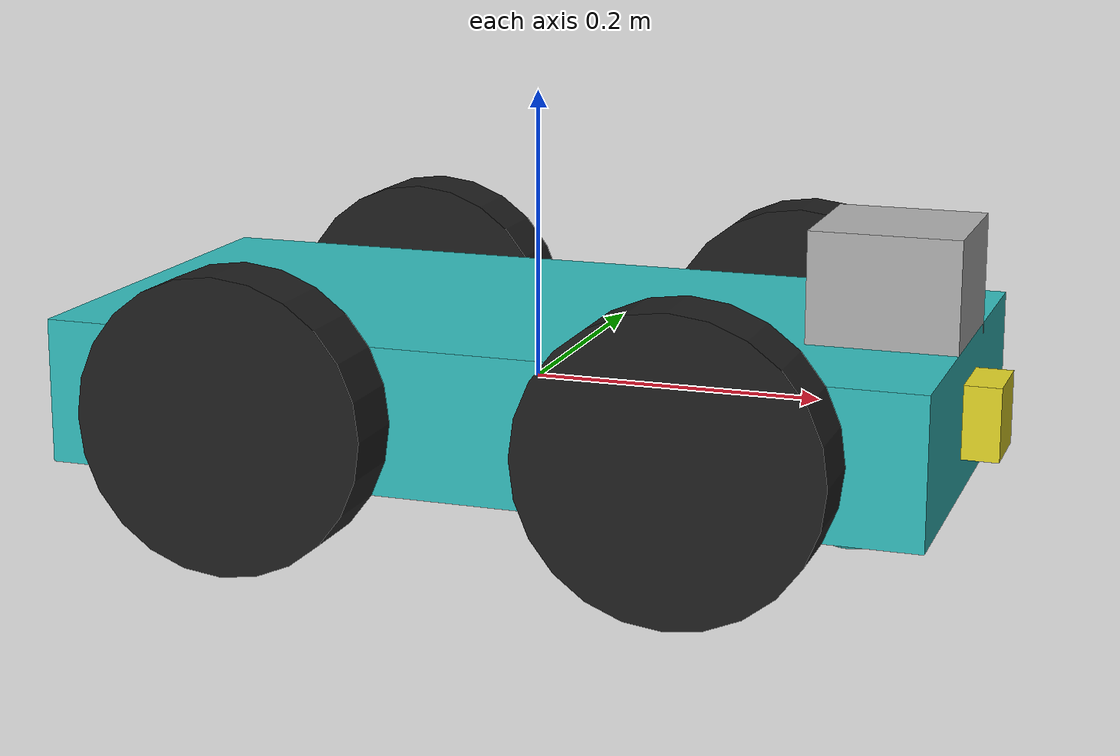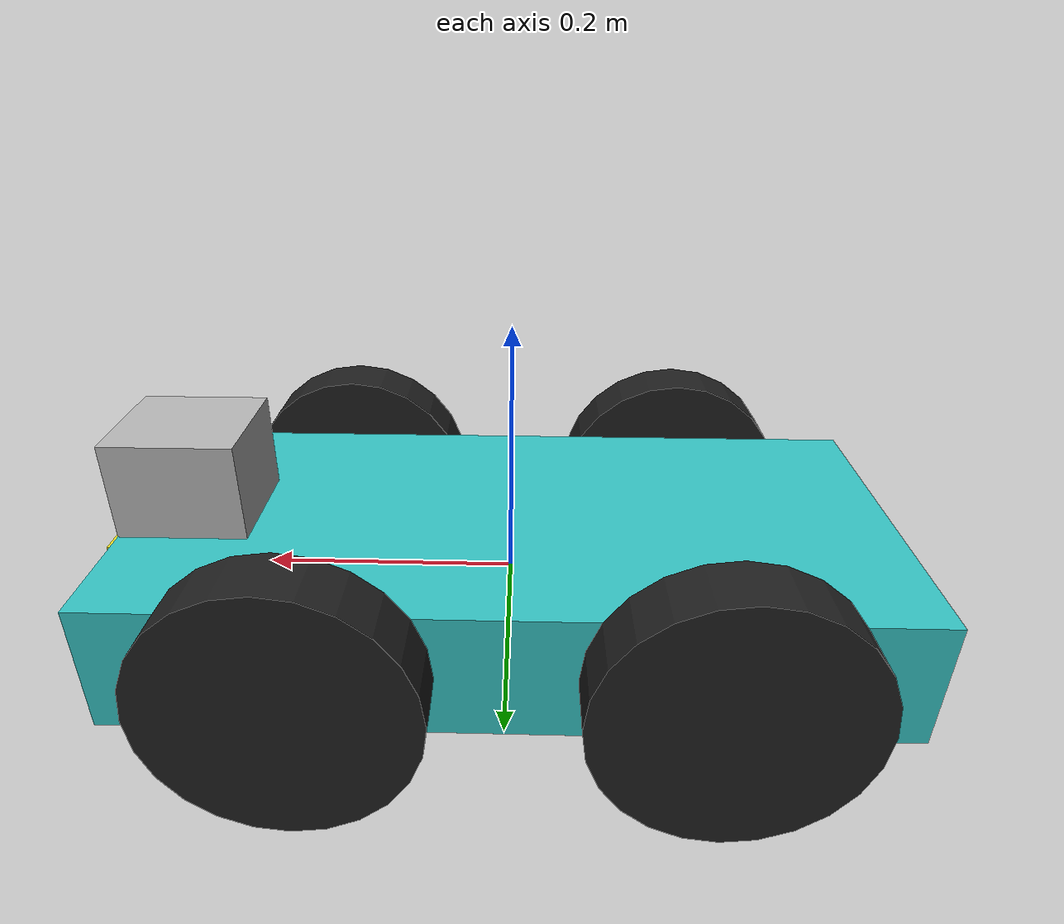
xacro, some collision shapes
<?xml version='1.0'?>

<robot name="my_robot" xmlns:xacro="http://www.ros.org/wiki/xacro">

  <xacro:property name="caster_x_origin" value="0.225" />
  <xacro:property name="front_wheel_hinge_joint_origin_x" value="0.15" />
  <xacro:property name="back_wheel_hinge_joint_origin_x" value="-0.15" />
  <xacro:include filename="$(find my_robot)/urdf/my_robot.gazebo" />

  <link name="robot_footprint_1"></link>

  <joint name="robot_footprint_1_joint" type="fixed">
    <origin xyz="0 0 0" rpy="0 0 0" />
    <parent link="robot_footprint_1"/>
    <child link="chassis" />
  </joint>

  <link name='chassis'>
    <pose>0 0 0.1 0 0 0</pose>

    <inertial>
      <mass value="15.0"/>
      <origin xyz="0.0 0 0" rpy=" 0 0 0"/>
      <inertia
          ixx="0.1" ixy="0" ixz="0"
          iyy="0.1" iyz="0"
          izz="0.1"
      />
    </inertial>

    <collision name='collision'>
      <origin xyz="0 0 0" rpy=" 0 0 0"/>
      <geometry>
        <box size=".6 .3 .1"/>
      </geometry>
    </collision>

    <visual name='chassis_visual'>
      <origin xyz="0 0 0" rpy=" 0 0 0"/>
      <geometry>
        <box size=".6 .3 .1"/>
      </geometry>
    </visual>

    <collision name='back_caster_collision'>
	    <origin xyz="-${caster_x_origin} 0 -0.05" rpy=" 0 0 0"/>
      <geometry>
        <sphere radius="0.0499"/>
      </geometry>
    </collision>

    <visual name='back_caster_visual'>
      <origin xyz="-${caster_x_origin} 0 -0.05" rpy=" 0 0 0"/>
      <geometry>
        <sphere radius="0.05"/>
      </geometry>
    </visual>

    <collision name='front_caster_collision'>
      <origin xyz="${caster_x_origin}  0 -0.05" rpy=" 0 0 0"/>
      <geometry>
        <sphere radius="0.0499"/>
      </geometry>
    </collision>

    <visual name='front_caster_visual'>
      <origin xyz="${caster_x_origin} 0 -0.05" rpy=" 0 0 0"/>
      <geometry>
        <sphere radius="0.05"/>
      </geometry>
    </visual>

  </link>

  <link name="front_left_wheel">
	  <collision name="front_left_wheel_collision">
		  <origin xyz="0 0 0" rpy=" 0 1.5707 1.5707"/>
		  <geometry>
			  <cylinder radius="0.1" length="0.05"/>
		  </geometry>
	  </collision>

	  <inertial>
		  <mass value="5"/>
		  <origin xyz="0 0 0" rpy=" 0 1.5707 1.5707"/>
		  <inertia
			  ixx="0.1" ixy="0" ixz="0"
			  iyy="0.1" iyz="0"
			  izz="0.1"
			  />
	  </inertial>

	  <visual name="front_left_wheel_visual">
		  <origin xyz="0 0 0" rpy=" 0 1.5707 1.5707"/>
		  <geometry>
			  <cylinder radius="0.1" length="0.05"/>
		  </geometry>
	  </visual>
  </link>

  <joint type="continuous" name="front_left_wheel_hinge">
	  <origin xyz="${front_wheel_hinge_joint_origin_x} 0.175 0" rpy="0 0 0"/>
	  <child link="front_left_wheel"/>
	  <parent link="chassis"/>
	  <axis xyz="0 1 0" rpy="0 0 0"/>
	  <limit effort="10000" velocity="1000"/>
	  <dynamics damping="1.0" friction="1.0"/>
  </joint>

 <link name="front_right_wheel">
	  <collision name="front_right_wheel_collision">
		  <origin xyz="0 0 0" rpy=" 0 1.5707 1.5707"/>
		  <geometry>
			  <cylinder radius="0.1" length="0.05"/>
		  </geometry>
	  </collision>

	  <inertial>
		  <mass value="5"/>
		  <origin xyz="0 0 0" rpy=" 0 1.5707 1.5707"/>
		  <inertia
			  ixx="0.1" ixy="0" ixz="0"
			  iyy="0.1" iyz="0"
			  izz="0.1"
			  />
	  </inertial>

	  <visual name="front_right_wheel_visual">
		  <origin xyz="0 0 0" rpy=" 0 1.5707 1.5707"/>
		  <geometry>
			  <cylinder radius="0.1" length="0.05"/>
		  </geometry>
	  </visual>
  </link>

  <joint type="continuous" name="front_right_wheel_hinge">
	  <origin xyz="${front_wheel_hinge_joint_origin_x} -0.175 0" rpy="0 0 0"/>
	  <child link="front_right_wheel"/>
	  <parent link="chassis"/>
	  <axis xyz="0 1 0" rpy="0 0 0"/>
	  <limit effort="10000" velocity="1000"/>
	  <dynamics damping="1.0" friction="1.0"/>
  </joint>

  <link name="back_left_wheel">
	  <collision name="back_left_wheel_collision">
		  <origin xyz="0 0 0" rpy=" 0 1.5707 1.5707"/>
		  <geometry>
			  <cylinder radius="0.1" length="0.05"/>
		  </geometry>
	  </collision>

	  <inertial>
		  <mass value="5"/>
		  <origin xyz="0 0 0" rpy=" 0 1.5707 1.5707"/>
		  <inertia
			  ixx="0.1" ixy="0" ixz="0"
			  iyy="0.1" iyz="0"
			  izz="0.1"
			  />
	  </inertial>

	  <visual name="back_left_wheel_visual">
		  <origin xyz="0 0 0" rpy=" 0 1.5707 1.5707"/>
		  <geometry>
			  <cylinder radius="0.1" length="0.05"/>
		  </geometry>
	  </visual>
  </link>

  <joint type="continuous" name="back_left_wheel_hinge">
	  <origin xyz="${back_wheel_hinge_joint_origin_x} 0.175 0" rpy="0 0 0"/>
	  <child link="back_left_wheel"/>
	  <parent link="chassis"/>
	  <axis xyz="0 1 0" rpy="0 0 0"/>
	  <limit effort="10000" velocity="1000"/>
	  <dynamics damping="1.0" friction="1.0"/>
  </joint>

 <link name="back_right_wheel">
	  <collision name="back_right_wheel_collision">
		  <origin xyz="0 0 0" rpy=" 0 1.5707 1.5707"/>
		  <geometry>
			  <cylinder radius="0.1" length="0.05"/>
		  </geometry>
	  </collision>

	  <inertial>
		  <mass value="5"/>
		  <origin xyz="0 0 0" rpy=" 0 1.5707 1.5707"/>
		  <inertia
			  ixx="0.1" ixy="0" ixz="0"
			  iyy="0.1" iyz="0"
			  izz="0.1"
			  />
	  </inertial>

	  <visual name="back_right_wheel_visual">
		  <origin xyz="0 0 0" rpy=" 0 1.5707 1.5707"/>
		  <geometry>
			  <cylinder radius="0.1" length="0.05"/>
		  </geometry>
	  </visual>
  </link>

  <joint type="continuous" name="back_right_wheel_hinge">
	  <origin xyz="${back_wheel_hinge_joint_origin_x} -0.175 0" rpy="0 0 0"/>
	  <child link="back_right_wheel"/>
	  <parent link="chassis"/>
	  <axis xyz="0 1 0" rpy="0 0 0"/>
	  <limit effort="10000" velocity="1000"/>
	  <dynamics damping="1.0" friction="1.0"/>
  </joint>

    <link name="camera">
	  <inertial>
		  <mass value="0.1"/>
		  <origin xyz="0 0 0" rpy=" 0 0 0"/>
		  <inertia
			  ixx="1e-6" ixy="0" ixz="0"
			  iyy="1e-6" iyz="0"
			  izz="1e-6"
			  />
		  <box_inertia
			  m="0.1" x="0.05" y="0.05" z="0.05"
			  />
	  </inertial>

	  <collision name="camera_collision">
		  <origin xyz="0 0 0" rpy=" 0 0 0"/>
		  <geometry>
			  <box size="0.05 0.05 0.05"/>
		  </geometry>
	  </collision>

	  <visual name="camera_visual">
		  <origin xyz="0 0 0" rpy=" 0 0 0"/>
		  <geometry>
			  <box size="0.05 0.05 0.05"/>
		  </geometry>
	  </visual>
  </link>

  <joint type="fixed" name="camera_joint">
	  <origin xyz="0.3 0 0" rpy=" 0 0 0"/>
	  <axis xyz="0 1 0" />
	  <child link="camera"/>
	  <parent link="chassis"/>
  </joint>

  <link name="hokuyo">
	  <inertial>
		  <mass value="1e-5"/>
		  <origin xyz="0 0 0" rpy=" 0 0 0"/>
		  <inertia
			  ixx="1e-6" ixy="0" ixz="0"
			  iyy="1e-6" iyz="0"
			  izz="1e-6"
			  />
	  </inertial>

	  <collision name="hokuyo_collision">
		  <origin xyz="0 0 0" rpy=" 0 0 0"/>
		  <geometry>
			  <box size="0.1 0.1 0.1"/>
		  </geometry>
	  </collision>

	  <visual name="hokuyo_visual">
		  <origin xyz="0 0 0" rpy=" 0 0 0"/>
		  <geometry>
			  <mesh filename = "package://my_robot/meshes/hokuyo.dae"/>
		  </geometry>
	  </visual>
  </link>

  <joint type="fixed" name="hokuyo_joint">
	  <origin xyz="0.25 0 0.075" rpy=" 0 0 0"/>
	  <axis xyz="0 1 0" rpy=" 0 0 0"/>
	  <child link="hokuyo"/>
	  <parent link="chassis"/>
   </joint>

</robot>
